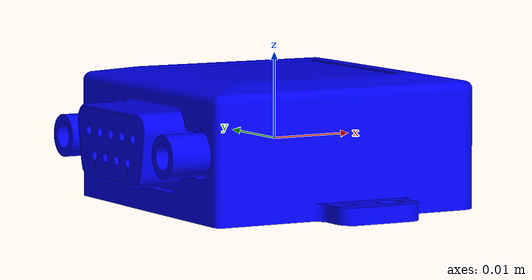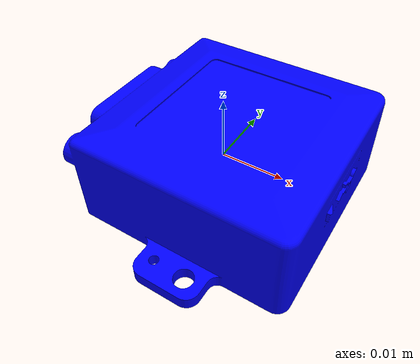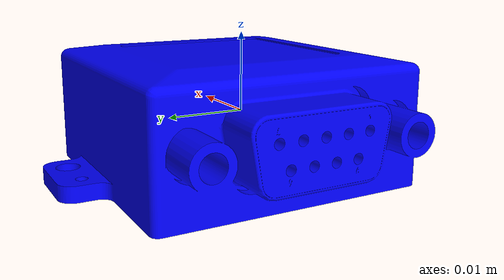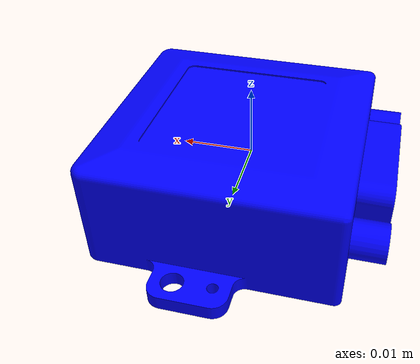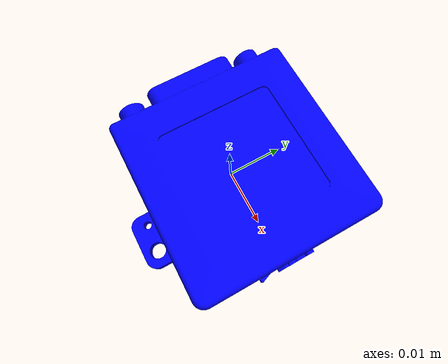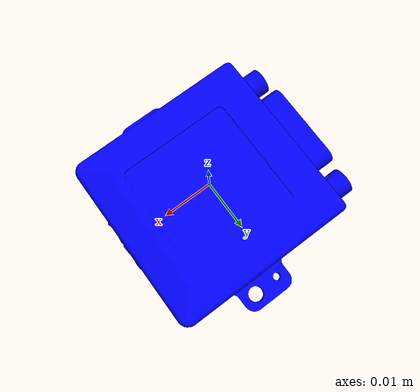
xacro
<?xml version="1.0"?>
<robot xmlns:xacro="http://www.ros.org/wiki/xacro" >

    <link name="imu_link">
        <visual>
            <origin xyz="0.004 -0.015 -0.0365" rpy="0 0 -1.57"/>
            <geometry>
                <mesh filename="package://prototype_vehicle_mini/mesh/imu.stl" scale="0.001 0.001 0.001"/>
            </geometry>
            <material name="Blue">
                <color rgba="0 0 1 1"/>
            </material>
        </visual>
        <collision>
            <origin xyz="0.0165 0.004 -0.0365" rpy="0 0 0"/>
            <geometry>
                <mesh filename="package://prototype_vehicle_mini/mesh/imu.stl" scale="0.001 0.001 0.001"/>
            </geometry>
        </collision>
        <inertial>
            <origin xyz="0 0 0" rpy="0 0 0"/>
            <mass value="0" />
            <inertia ixx="0.0"    ixy="0.0"     ixz="0.0"
                     iyx="0.0"    iyy="0.0"     iyz="0.0"
                     izx="0.0"    izy="0.0"     izz="0.0" />
        </inertial>
    </link>

    <gazebo reference="imu_link">
        <material>Gazebo/Blue</material>
        <mu1 value="0.01"/>
        <mu2 value="0.01"/>
        <kp value="10000000.0"/>
        <kd value="1.0"/>
        <minDepth>0.01</minDepth>
    </gazebo>

</robot>
